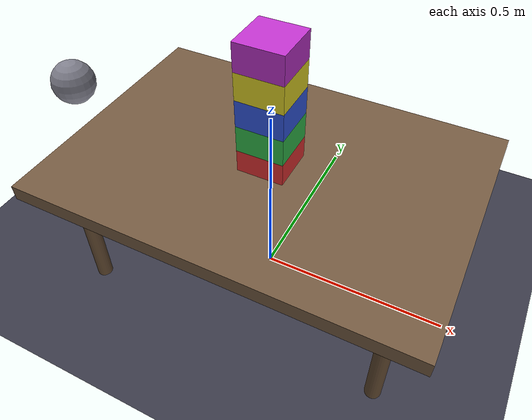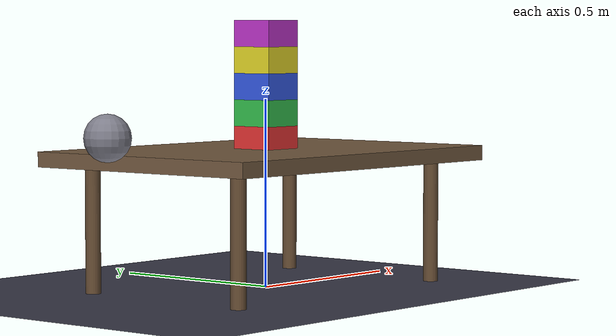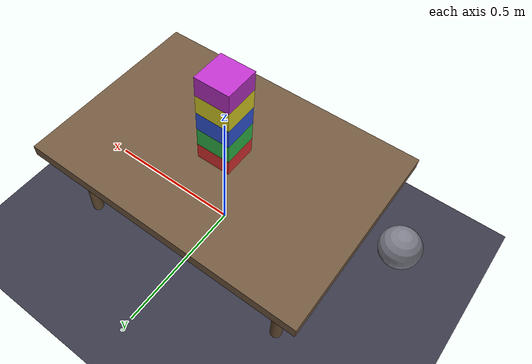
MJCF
<mujoco model="stacking_blocks">
  <option gravity="0 0 -9.81" timestep="0.005"/>
  <default>
    <geom friction="1.0 0.02 0.02" condim="3"/>
  </default>
  <worldbody>
    <light pos="0 0 5" diffuse="0.9 0.9 0.9"/>
    <geom name="floor" type="plane" size="5 5 0.1" rgba="0.22 0.22 0.28 1"/>
    <!-- Table surface -->
    <geom name="table" type="box" pos="0 0 0.35" size="0.5 0.35 0.02"
          rgba="0.45 0.35 0.25 1"/>
    <geom name="table_leg1" type="cylinder" pos="0.4 0.25 0.175"
          size="0.02 0.175" rgba="0.4 0.3 0.2 1"/>
    <geom name="table_leg2" type="cylinder" pos="-0.4 0.25 0.175"
          size="0.02 0.175" rgba="0.4 0.3 0.2 1"/>
    <geom name="table_leg3" type="cylinder" pos="0.4 -0.25 0.175"
          size="0.02 0.175" rgba="0.4 0.3 0.2 1"/>
    <geom name="table_leg4" type="cylinder" pos="-0.4 -0.25 0.175"
          size="0.02 0.175" rgba="0.4 0.3 0.2 1"/>
    <!-- Stack of blocks -->
    <body name="block1" pos="0 0 0.395">
      <freejoint/>
      <geom type="box" size="0.06 0.06 0.035" rgba="0.9 0.2 0.2 1" mass="0.3"/>
    </body>
    <body name="block2" pos="0 0 0.465">
      <freejoint/>
      <geom type="box" size="0.06 0.06 0.035" rgba="0.2 0.75 0.3 1" mass="0.3"/>
    </body>
    <body name="block3" pos="0 0 0.535">
      <freejoint/>
      <geom type="box" size="0.06 0.06 0.035" rgba="0.2 0.35 0.9 1" mass="0.3"/>
    </body>
    <body name="block4" pos="0 0 0.605">
      <freejoint/>
      <geom type="box" size="0.06 0.06 0.035" rgba="0.9 0.85 0.15 1" mass="0.3"/>
    </body>
    <body name="block5" pos="0 0 0.675">
      <freejoint/>
      <geom type="box" size="0.06 0.06 0.035" rgba="0.75 0.2 0.8 1" mass="0.3"/>
    </body>
    <!-- Sphere to knock them over -->
    <body name="cannonball" pos="-0.6 0 0.42">
      <freejoint/>
      <geom type="sphere" size="0.06" rgba="0.5 0.5 0.55 1" mass="2"/>
    </body>
  </worldbody>
  <sensor>
    <framepos name="block1_pos" objtype="body" objname="block1"/>
    <framepos name="cannonball_pos" objtype="body" objname="cannonball"/>
    <framelinvel name="cannonball_vel" objtype="body" objname="cannonball"/>
  </sensor>
</mujoco>
